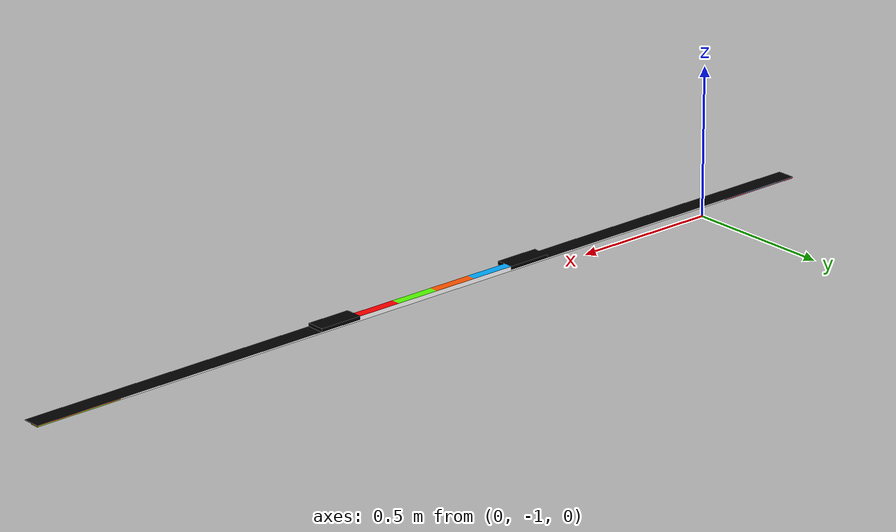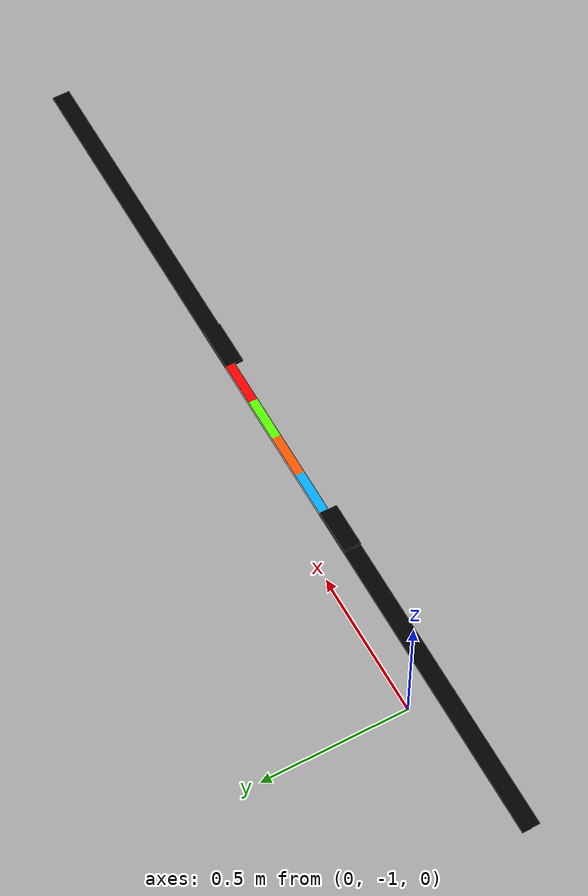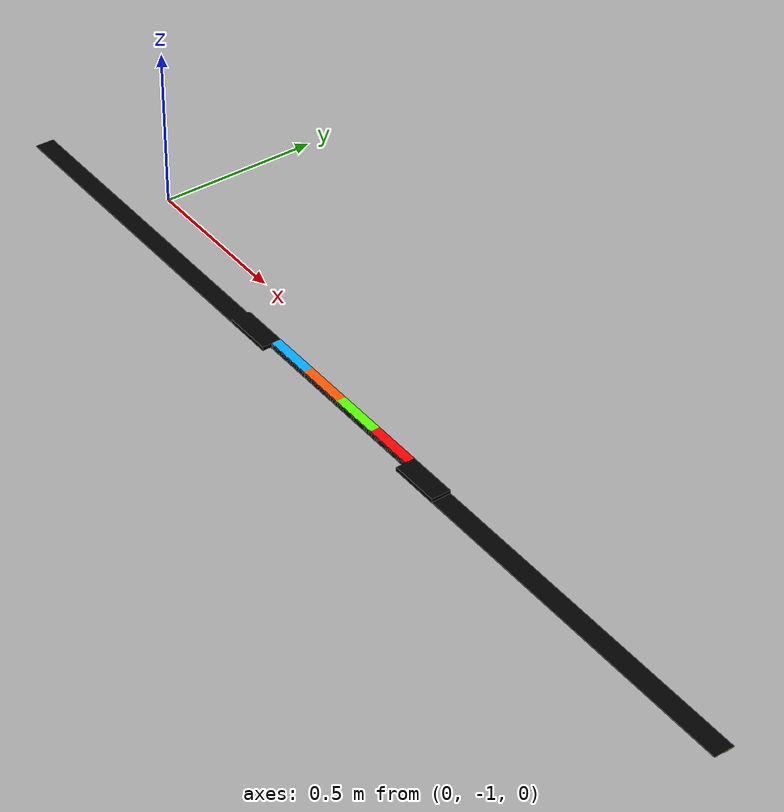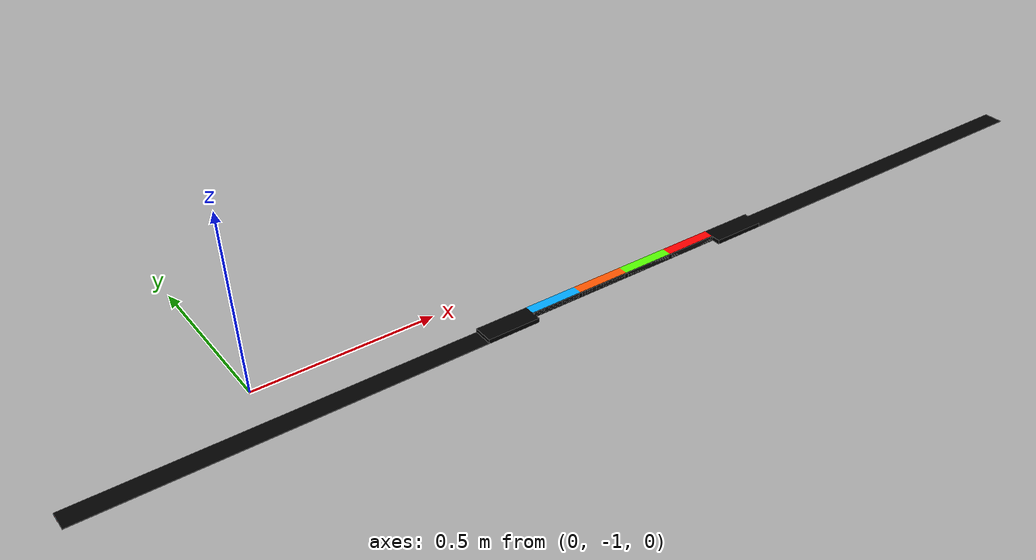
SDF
<sdf version="1.4">
 <world name="default">
  <physics type="ode">
   <max_step_size>0.001</max_step_size>
   <real_time_factor>1</real_time_factor>
   <real_time_update_rate>1000</real_time_update_rate>
   <gravity>0 0 -9.8</gravity>
  </physics>
  <spherical_coordinates>
   <surface_model>EARTH_WGS84</surface_model>
   <latitude_deg>0</latitude_deg>
   <longitude_deg>0</longitude_deg>
   <elevation>0</elevation>
   <heading_deg>0</heading_deg>
  </spherical_coordinates>
  <scene><sky><clouds><speed>12</speed></clouds></sky></scene>
  <include><uri>model://sun</uri></include>
  <include><pose>0 0 0 1.57 -0 0</pose><uri>model://arena</uri></include>
 </world>
</sdf>

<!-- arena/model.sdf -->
<sdf version="1.4">
  <model name='arena'>
      <static>1</static>
      <link name='link_arena'>
        <collision name='collision'>
          <pose>0 0 0 0 -0 0</pose>
          <geometry>
            <mesh>
              <uri>model://arena/meshes/arena.dae</uri>
              <scale>1 0.01 1</scale>
            </mesh>
          </geometry>
          <surface>
            <friction>
              <ode>
                <mu>100</mu>
                <mu2>50</mu2>
              </ode>
            </friction>
          <bounce>
            <restitution_coefficient>0</restitution_coefficient>
            <threshold>1e+06</threshold>
          </bounce>
          <contact>
            <collide_without_contact>0</collide_without_contact>
            <collide_without_contact_bitmask>1</collide_without_contact_bitmask>
            <ode>
              <soft_cfm>0</soft_cfm>
              <soft_erp>0.2</soft_erp>
              <kp>1e+13</kp>
              <kd>1</kd>
              <max_vel>0.01</max_vel>
              <min_depth>0</min_depth>
            </ode>
            <bullet>
              <split_impulse>1</split_impulse>
              <split_impulse_penetration_threshold>-0.01</split_impulse_penetration_threshold>
              <soft_cfm>0</soft_cfm>
              <soft_erp>0.2</soft_erp>
              <kp>1e+13</kp>
              <kd>1</kd>
            </bullet>
          </contact>
          </surface>
          <max_contacts>10</max_contacts>
          <laser_retro>0</laser_retro>
        </collision>
        <visual name='visual'>
          <cast_shadows>1</cast_shadows>
          <transparency>0</transparency>
          <geometry>
            <mesh>
              <uri>model://arena/meshes/arena.dae</uri>
              <scale>1 0.01 1</scale>
            </mesh>
          </geometry>
        </visual>
        <velocity_decay>
          <linear>0</linear>
          <angular>0</angular>
        </velocity_decay>
        <self_collide>0</self_collide>
        <kinematic>0</kinematic>
        <gravity>1</gravity>
      </link>
  </model>
</sdf>
